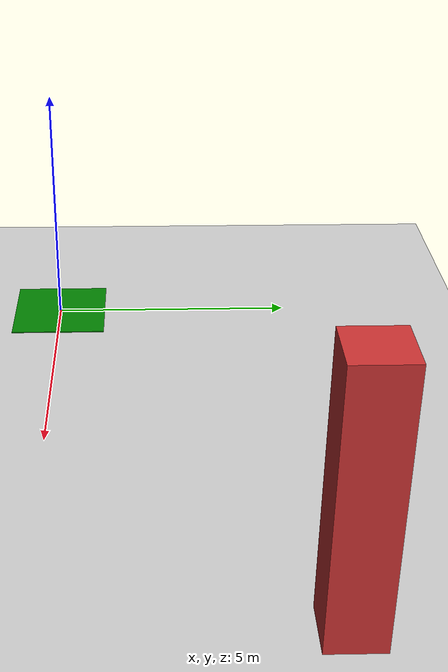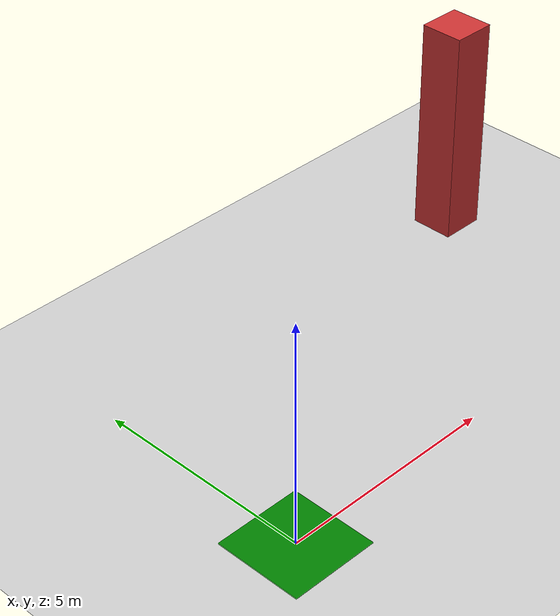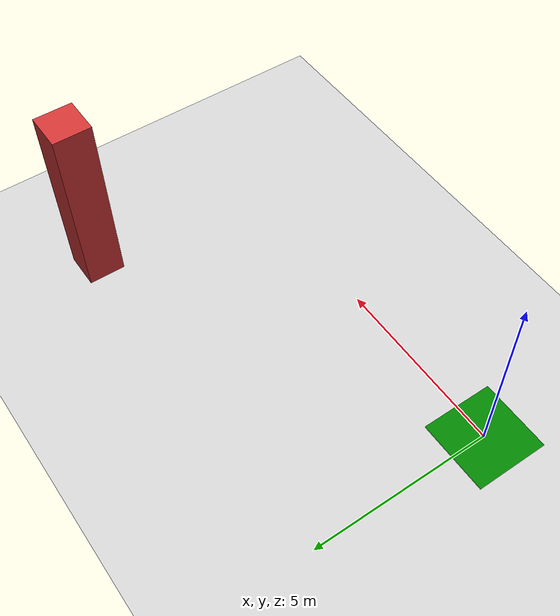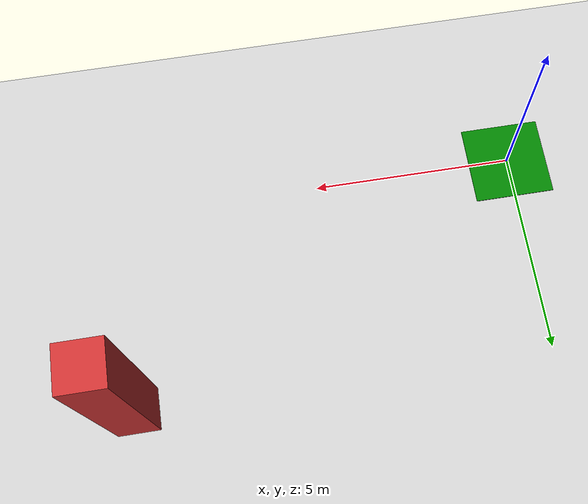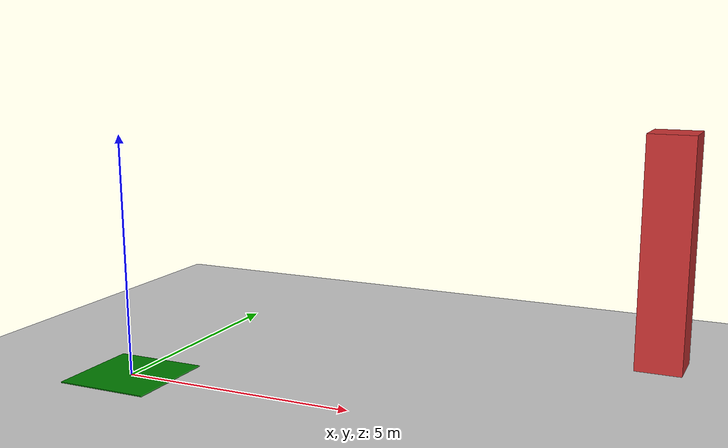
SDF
<?xml version="1.0"?>
<sdf version="1.6">
  <world name="uav_world">
    <!-- Physics -->
    <physics name="default_physics" default="true" type="ode">
      <real_time_update_rate>1000</real_time_update_rate>
      <max_step_size>0.001</max_step_size>
      <real_time_factor>1.0</real_time_factor>
    </physics>

    <!-- Scene -->
    <scene>
      <ambient>0.4 0.4 0.4 1</ambient>
      <background>0.7 0.7 0.7 1</background>
      <shadows>true</shadows>
    </scene>

    <!-- Ground Plane -->
    <model name="ground_plane">
      <static>true</static>
      <link name="link">
        <collision name="collision">
          <geometry>
            <plane>
              <normal>0 0 1</normal>
              <size>1000 1000</size>
            </plane>
          </geometry>
          <surface>
            <friction>
              <ode>
                <mu>100</mu>
                <mu2>50</mu2>
              </ode>
            </friction>
          </surface>
        </collision>
        <visual name="visual">
          <cast_shadows>false</cast_shadows>
          <geometry>
            <plane>
              <normal>0 0 1</normal>
              <size>1000 1000</size>
            </plane>
          </geometry>
          <material>
            <script>
              <uri>file://media/materials/scripts/gazebo.material</uri>
              <name>Gazebo/Grey</name>
            </script>
          </material>
        </visual>
      </link>
    </model>

    <!-- Sun -->
    <light type="directional" name="sun">
      <cast_shadows>true</cast_shadows>
      <pose>0 0 10 0 0 0</pose>
      <diffuse>0.8 0.8 0.8 1</diffuse>
      <specular>0.2 0.2 0.2 1</specular>
      <attenuation>
        <range>1000</range>
        <constant>0.9</constant>
        <linear>0.01</linear>
        <quadratic>0.001</quadratic>
      </attenuation>
      <direction>-0.5 0.1 -0.9</direction>
    </light>

    <!-- Takeoff/Landing Zone -->
    <model name="landing_zone">
      <static>true</static>
      <pose>0 0 0.01 0 0 0</pose>
      <link name="link">
        <visual name="visual">
          <geometry>
            <box>
              <size>2 2 0.02</size>
            </box>
          </geometry>
          <material>
            <ambient>0 0.5 0 1</ambient>
            <diffuse>0 0.5 0 1</diffuse>
          </material>
        </visual>
      </link>
    </model>

    <!-- Obstacles -->
    <model name="obstacle_1">
      <static>true</static>
      <pose>10 5 2.5 0 0 0</pose>
      <link name="link">
        <collision name="collision">
          <geometry>
            <box>
              <size>1 1 5</size>
            </box>
          </geometry>
        </collision>
        <visual name="visual">
          <geometry>
            <box>
              <size>1 1 5</size>
            </box>
          </geometry>
          <material>
            <ambient>0.8 0.2 0.2 1</ambient>
            <diffuse>0.8 0.2 0.2 1</diffuse>
          </material>
        </visual>
      </link>
    </model>

    <!-- Wind Plugin -->
    <plugin name="wind_plugin" filename="libgazebo_ros_wind.so">
      <wind_topic>/world/uav_world/wind</wind_topic>
      <wind_velocity_mean>2.0</wind_velocity_mean>
      <wind_velocity_max>10.0</wind_velocity_max>
      <wind_velocity_variance>0.5</wind_velocity_variance>
      <wind_direction_mean>0.0</wind_direction_mean>
      <wind_direction_variance>0.2</wind_direction_variance>
    </plugin>

    <!-- GPS Plugin -->
    <plugin name="gps_plugin" filename="libgazebo_ros_gps.so">
      <robot_namespace>/uav</robot_namespace>
      <topic_name>/gps/fix</topic_name>
      <velocity_topic_name>/gps/vel</velocity_topic_name>
      <reference_latitude>37.7749</reference_latitude>
      <reference_longitude>-122.4194</reference_longitude>
      <reference_altitude>0.0</reference_altitude>
      <offset>0 0 0</offset>
      <drift>0.0001 0.0001 0.0001</drift>
      <gaussian_noise>0.01 0.01 0.01</gaussian_noise>
      <velocity_gaussian_noise>0.05 0.05 0.05</velocity_gaussian_noise>
    </plugin>
  </world>
</sdf>
